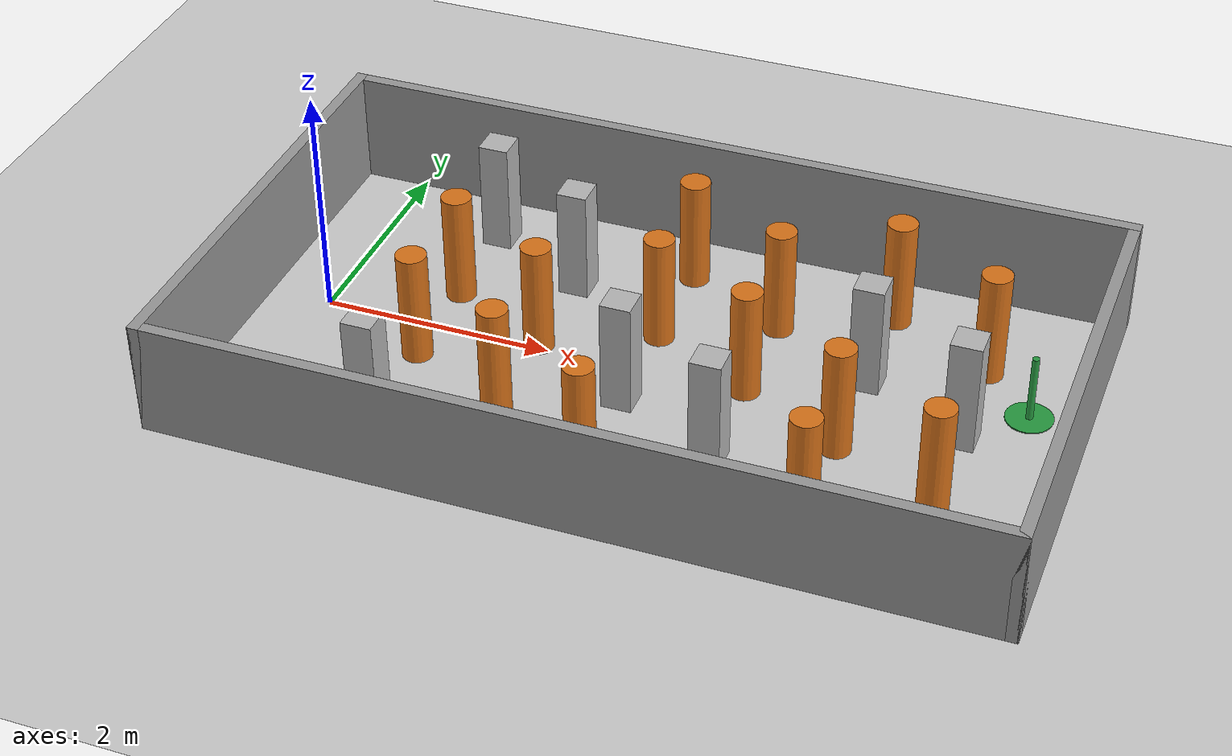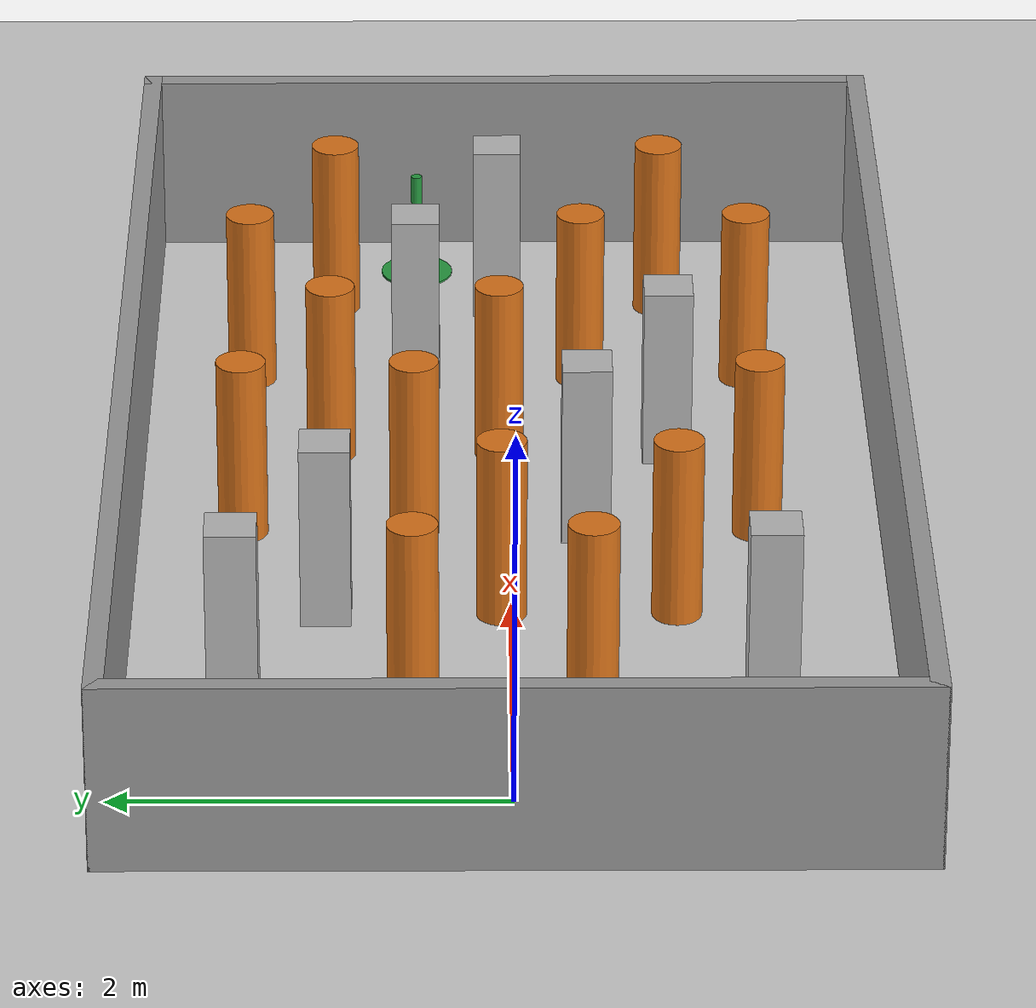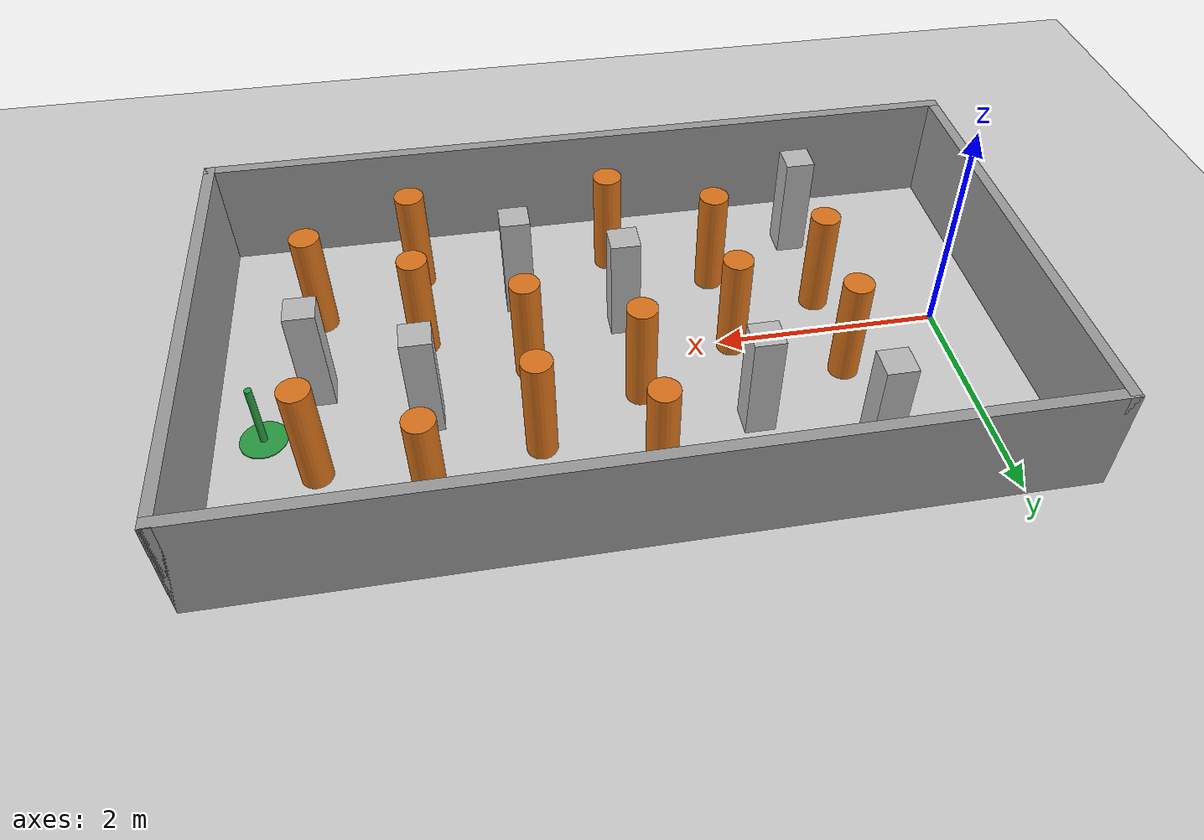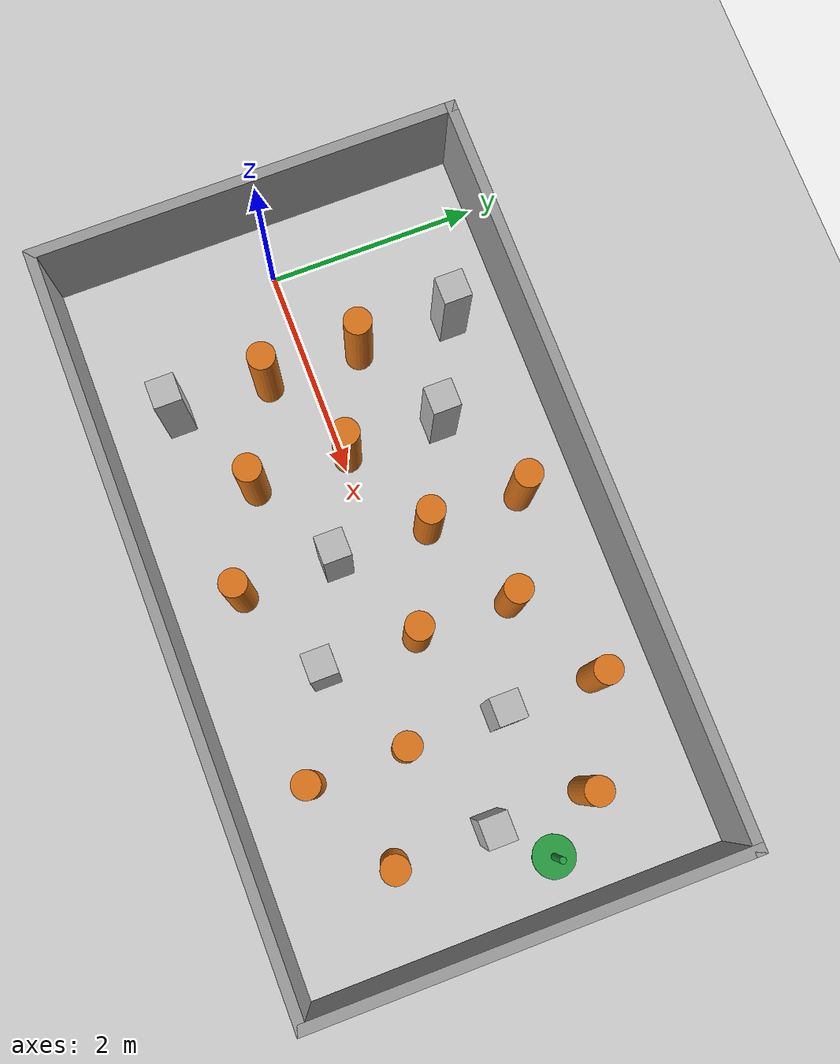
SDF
<sdf version="1.6">
 <world name="default">
  <light name="sun" type="directional">
   <pose>0 0 10 0 -0 0</pose>
   <diffuse>0.8 0.8 0.8 1</diffuse>
   <specular>0.1 0.1 0.1 1</specular>
   <attenuation>
    <range>1000</range>
    <constant>0.9</constant>
    <linear>0.01</linear>
    <quadratic>0.001</quadratic>
   </attenuation>
   <direction>-0.5 0.5 -1</direction>
  </light>
  <model name="ground_plane">
   <static>1</static>
   <link name="link">
    <collision name="collision">
     <geometry><plane><normal>0 0 1</normal><size>100 100</size></plane></geometry>
     <surface><friction><ode><mu>100</mu><mu2>50</mu2></ode></friction></surface>
    </collision>
    <visual name="visual">
     <cast_shadows>0</cast_shadows>
     <geometry><plane><normal>0 0 1</normal><size>100 100</size></plane></geometry>
     <material>
      <script><uri>file://media/materials/scripts/gazebo.material</uri><name>Gazebo/Grey</name></script>
     </material>
    </visual>
   </link>
  </model>
  <gravity>0 0 -9.8</gravity>
  <magnetic_field>6e-06 2.3e-05 -4.2e-05</magnetic_field>
  <atmosphere type="adiabatic"/>
  <physics name="default_physics" default="0" type="ode">
   <max_step_size>0.001</max_step_size>
   <real_time_factor>1</real_time_factor>
   <real_time_update_rate>1000</real_time_update_rate>
  </physics>
  <scene><ambient>0.4 0.4 0.4 1</ambient><background>0.7 0.7 0.7 1</background><shadows>1</shadows></scene>
  <spherical_coordinates>
   <surface_model>EARTH_WGS84</surface_model>
   <latitude_deg>0</latitude_deg>
   <longitude_deg>0</longitude_deg>
   <elevation>0</elevation>
   <heading_deg>0</heading_deg>
  </spherical_coordinates>
  <model name="wall_0">
   <static>1</static>
   <pose>2.9 2.0 0.5 0 0 0</pose>
   <link name="l">
    <collision name="c"><geometry><box><size>7.1 0.1 1.0</size></box></geometry></collision>
    <visual name="v">
     <geometry><box><size>7.1 0.1 1.0</size></box></geometry>
     <material><ambient>0.6 0.6 0.6 1</ambient><diffuse>0.6 0.6 0.6 1</diffuse></material>
    </visual>
   </link>
  </model>
  <model name="wall_1">
   <static>1</static>
   <pose>2.9 -2.0 0.5 0 0 0</pose>
   <link name="l">
    <collision name="c"><geometry><box><size>7.1 0.1 1.0</size></box></geometry></collision>
    <visual name="v">
     <geometry><box><size>7.1 0.1 1.0</size></box></geometry>
     <material><ambient>0.6 0.6 0.6 1</ambient><diffuse>0.6 0.6 0.6 1</diffuse></material>
    </visual>
   </link>
  </model>
  <model name="wall_2">
   <static>1</static>
   <pose>-0.6 0 0.5 0 0 0</pose>
   <link name="l">
    <collision name="c"><geometry><box><size>0.1 4.1 1.0</size></box></geometry></collision>
    <visual name="v">
     <geometry><box><size>0.1 4.1 1.0</size></box></geometry>
     <material><ambient>0.6 0.6 0.6 1</ambient><diffuse>0.6 0.6 0.6 1</diffuse></material>
    </visual>
   </link>
  </model>
  <model name="wall_3">
   <static>1</static>
   <pose>6.4 0 0.5 0 0 0</pose>
   <link name="l">
    <collision name="c"><geometry><box><size>0.1 4.1 1.0</size></box></geometry></collision>
    <visual name="v">
     <geometry><box><size>0.1 4.1 1.0</size></box></geometry>
     <material><ambient>0.6 0.6 0.6 1</ambient><diffuse>0.6 0.6 0.6 1</diffuse></material>
    </visual>
   </link>
  </model>
  <model name="obs_0">
   <static>1</static>
   <pose>1.0 -1.3 0.5 0 0 0</pose>
   <link name="l">
    <collision name="c"><geometry><box><size>0.26 0.26 1.0</size></box></geometry></collision>
    <visual name="v">
     <geometry><box><size>0.26 0.26 1.0</size></box></geometry>
     <material><ambient>0.72 0.72 0.72 1</ambient><diffuse>0.72 0.72 0.72 1</diffuse></material>
    </visual>
   </link>
  </model>
  <model name="obs_1">
   <static>1</static>
   <pose>1.0 -0.4 0.5 0 0 0</pose>
   <link name="l">
    <collision name="c">
     <geometry><cylinder><radius>0.13</radius><length>1.0</length></cylinder></geometry>
    </collision>
    <visual name="v">
     <geometry><cylinder><radius>0.13</radius><length>1.0</length></cylinder></geometry>
     <material><ambient>0.85 0.45 0.1 1</ambient><diffuse>0.85 0.45 0.1 1</diffuse></material>
    </visual>
   </link>
  </model>
  <model name="obs_2">
   <static>1</static>
   <pose>1.0 0.5 0.5 0 0 0</pose>
   <link name="l">
    <collision name="c">
     <geometry><cylinder><radius>0.13</radius><length>1.0</length></cylinder></geometry>
    </collision>
    <visual name="v">
     <geometry><cylinder><radius>0.13</radius><length>1.0</length></cylinder></geometry>
     <material><ambient>0.85 0.45 0.1 1</ambient><diffuse>0.85 0.45 0.1 1</diffuse></material>
    </visual>
   </link>
  </model>
  <model name="obs_3">
   <static>1</static>
   <pose>1.0 1.4 0.5 0 0 0</pose>
   <link name="l">
    <collision name="c"><geometry><box><size>0.26 0.26 1.0</size></box></geometry></collision>
    <visual name="v">
     <geometry><box><size>0.26 0.26 1.0</size></box></geometry>
     <material><ambient>0.72 0.72 0.72 1</ambient><diffuse>0.72 0.72 0.72 1</diffuse></material>
    </visual>
   </link>
  </model>
  <model name="obs_4">
   <static>1</static>
   <pose>1.9 -0.85 0.5 0 0 0</pose>
   <link name="l">
    <collision name="c">
     <geometry><cylinder><radius>0.13</radius><length>1.0</length></cylinder></geometry>
    </collision>
    <visual name="v">
     <geometry><cylinder><radius>0.13</radius><length>1.0</length></cylinder></geometry>
     <material><ambient>0.85 0.45 0.1 1</ambient><diffuse>0.85 0.45 0.1 1</diffuse></material>
    </visual>
   </link>
  </model>
  <model name="obs_5">
   <static>1</static>
   <pose>1.9 0.05 0.5 0 0 0</pose>
   <link name="l">
    <collision name="c">
     <geometry><cylinder><radius>0.13</radius><length>1.0</length></cylinder></geometry>
    </collision>
    <visual name="v">
     <geometry><cylinder><radius>0.13</radius><length>1.0</length></cylinder></geometry>
     <material><ambient>0.85 0.45 0.1 1</ambient><diffuse>0.85 0.45 0.1 1</diffuse></material>
    </visual>
   </link>
  </model>
  <model name="obs_6">
   <static>1</static>
   <pose>1.9 0.95 0.5 0 0 0</pose>
   <link name="l">
    <collision name="c"><geometry><box><size>0.26 0.26 1.0</size></box></geometry></collision>
    <visual name="v">
     <geometry><box><size>0.26 0.26 1.0</size></box></geometry>
     <material><ambient>0.72 0.72 0.72 1</ambient><diffuse>0.72 0.72 0.72 1</diffuse></material>
    </visual>
   </link>
  </model>
  <model name="obs_7">
   <static>1</static>
   <pose>2.8 -1.3 0.5 0 0 0</pose>
   <link name="l">
    <collision name="c">
     <geometry><cylinder><radius>0.13</radius><length>1.0</length></cylinder></geometry>
    </collision>
    <visual name="v">
     <geometry><cylinder><radius>0.13</radius><length>1.0</length></cylinder></geometry>
     <material><ambient>0.85 0.45 0.1 1</ambient><diffuse>0.85 0.45 0.1 1</diffuse></material>
    </visual>
   </link>
  </model>
  <model name="obs_8">
   <static>1</static>
   <pose>2.8 -0.4 0.5 0 0 0</pose>
   <link name="l">
    <collision name="c"><geometry><box><size>0.26 0.26 1.0</size></box></geometry></collision>
    <visual name="v">
     <geometry><box><size>0.26 0.26 1.0</size></box></geometry>
     <material><ambient>0.72 0.72 0.72 1</ambient><diffuse>0.72 0.72 0.72 1</diffuse></material>
    </visual>
   </link>
  </model>
  <model name="obs_9">
   <static>1</static>
   <pose>2.8 0.5 0.5 0 0 0</pose>
   <link name="l">
    <collision name="c">
     <geometry><cylinder><radius>0.13</radius><length>1.0</length></cylinder></geometry>
    </collision>
    <visual name="v">
     <geometry><cylinder><radius>0.13</radius><length>1.0</length></cylinder></geometry>
     <material><ambient>0.85 0.45 0.1 1</ambient><diffuse>0.85 0.45 0.1 1</diffuse></material>
    </visual>
   </link>
  </model>
  <model name="obs_10">
   <static>1</static>
   <pose>2.8 1.4 0.5 0 0 0</pose>
   <link name="l">
    <collision name="c">
     <geometry><cylinder><radius>0.13</radius><length>1.0</length></cylinder></geometry>
    </collision>
    <visual name="v">
     <geometry><cylinder><radius>0.13</radius><length>1.0</length></cylinder></geometry>
     <material><ambient>0.85 0.45 0.1 1</ambient><diffuse>0.85 0.45 0.1 1</diffuse></material>
    </visual>
   </link>
  </model>
  <model name="obs_11">
   <static>1</static>
   <pose>3.7 -0.85 0.5 0 0 0</pose>
   <link name="l">
    <collision name="c"><geometry><box><size>0.26 0.26 1.0</size></box></geometry></collision>
    <visual name="v">
     <geometry><box><size>0.26 0.26 1.0</size></box></geometry>
     <material><ambient>0.72 0.72 0.72 1</ambient><diffuse>0.72 0.72 0.72 1</diffuse></material>
    </visual>
   </link>
  </model>
  <model name="obs_12">
   <static>1</static>
   <pose>3.7 0.05 0.5 0 0 0</pose>
   <link name="l">
    <collision name="c">
     <geometry><cylinder><radius>0.13</radius><length>1.0</length></cylinder></geometry>
    </collision>
    <visual name="v">
     <geometry><cylinder><radius>0.13</radius><length>1.0</length></cylinder></geometry>
     <material><ambient>0.85 0.45 0.1 1</ambient><diffuse>0.85 0.45 0.1 1</diffuse></material>
    </visual>
   </link>
  </model>
  <model name="obs_13">
   <static>1</static>
   <pose>3.7 0.95 0.5 0 0 0</pose>
   <link name="l">
    <collision name="c">
     <geometry><cylinder><radius>0.13</radius><length>1.0</length></cylinder></geometry>
    </collision>
    <visual name="v">
     <geometry><cylinder><radius>0.13</radius><length>1.0</length></cylinder></geometry>
     <material><ambient>0.85 0.45 0.1 1</ambient><diffuse>0.85 0.45 0.1 1</diffuse></material>
    </visual>
   </link>
  </model>
  <model name="obs_14">
   <static>1</static>
   <pose>4.6 -1.3 0.5 0 0 0</pose>
   <link name="l">
    <collision name="c">
     <geometry><cylinder><radius>0.13</radius><length>1.0</length></cylinder></geometry>
    </collision>
    <visual name="v">
     <geometry><cylinder><radius>0.13</radius><length>1.0</length></cylinder></geometry>
     <material><ambient>0.85 0.45 0.1 1</ambient><diffuse>0.85 0.45 0.1 1</diffuse></material>
    </visual>
   </link>
  </model>
  <model name="obs_15">
   <static>1</static>
   <pose>4.6 -0.4 0.5 0 0 0</pose>
   <link name="l">
    <collision name="c">
     <geometry><cylinder><radius>0.13</radius><length>1.0</length></cylinder></geometry>
    </collision>
    <visual name="v">
     <geometry><cylinder><radius>0.13</radius><length>1.0</length></cylinder></geometry>
     <material><ambient>0.85 0.45 0.1 1</ambient><diffuse>0.85 0.45 0.1 1</diffuse></material>
    </visual>
   </link>
  </model>
  <model name="obs_16">
   <static>1</static>
   <pose>4.6 0.5 0.5 0 0 0</pose>
   <link name="l">
    <collision name="c"><geometry><box><size>0.26 0.26 1.0</size></box></geometry></collision>
    <visual name="v">
     <geometry><box><size>0.26 0.26 1.0</size></box></geometry>
     <material><ambient>0.72 0.72 0.72 1</ambient><diffuse>0.72 0.72 0.72 1</diffuse></material>
    </visual>
   </link>
  </model>
  <model name="obs_17">
   <static>1</static>
   <pose>4.6 1.4 0.5 0 0 0</pose>
   <link name="l">
    <collision name="c">
     <geometry><cylinder><radius>0.13</radius><length>1.0</length></cylinder></geometry>
    </collision>
    <visual name="v">
     <geometry><cylinder><radius>0.13</radius><length>1.0</length></cylinder></geometry>
     <material><ambient>0.85 0.45 0.1 1</ambient><diffuse>0.85 0.45 0.1 1</diffuse></material>
    </visual>
   </link>
  </model>
  <model name="obs_18">
   <static>1</static>
   <pose>5.5 -0.85 0.5 0 0 0</pose>
   <link name="l">
    <collision name="c">
     <geometry><cylinder><radius>0.13</radius><length>1.0</length></cylinder></geometry>
    </collision>
    <visual name="v">
     <geometry><cylinder><radius>0.13</radius><length>1.0</length></cylinder></geometry>
     <material><ambient>0.85 0.45 0.1 1</ambient><diffuse>0.85 0.45 0.1 1</diffuse></material>
    </visual>
   </link>
  </model>
  <model name="obs_19">
   <static>1</static>
   <pose>5.5 0.05 0.5 0 0 0</pose>
   <link name="l">
    <collision name="c"><geometry><box><size>0.26 0.26 1.0</size></box></geometry></collision>
    <visual name="v">
     <geometry><box><size>0.26 0.26 1.0</size></box></geometry>
     <material><ambient>0.72 0.72 0.72 1</ambient><diffuse>0.72 0.72 0.72 1</diffuse></material>
    </visual>
   </link>
  </model>
  <model name="obs_20">
   <static>1</static>
   <pose>5.5 0.95 0.5 0 0 0</pose>
   <link name="l">
    <collision name="c">
     <geometry><cylinder><radius>0.13</radius><length>1.0</length></cylinder></geometry>
    </collision>
    <visual name="v">
     <geometry><cylinder><radius>0.13</radius><length>1.0</length></cylinder></geometry>
     <material><ambient>0.85 0.45 0.1 1</ambient><diffuse>0.85 0.45 0.1 1</diffuse></material>
    </visual>
   </link>
  </model>
  <model name="goal_marker">
   <static>1</static>
   <pose>5.95 0.5 0 0 0 0</pose>
   <link name="l">
    <visual name="pad">
     <pose>0 0 0.005 0 0 0</pose>
     <geometry><cylinder><radius>0.2</radius><length>0.01</length></cylinder></geometry>
     <material><ambient>0.15 0.6 0.25 1</ambient><diffuse>0.15 0.6 0.25 1</diffuse></material>
    </visual>
    <visual name="pole">
     <pose>0 0 0.3 0 0 0</pose>
     <geometry><cylinder><radius>0.03</radius><length>0.6</length></cylinder></geometry>
     <material><ambient>0.15 0.6 0.25 1</ambient><diffuse>0.15 0.6 0.25 1</diffuse></material>
    </visual>
   </link>
  </model>
 </world>
</sdf>
